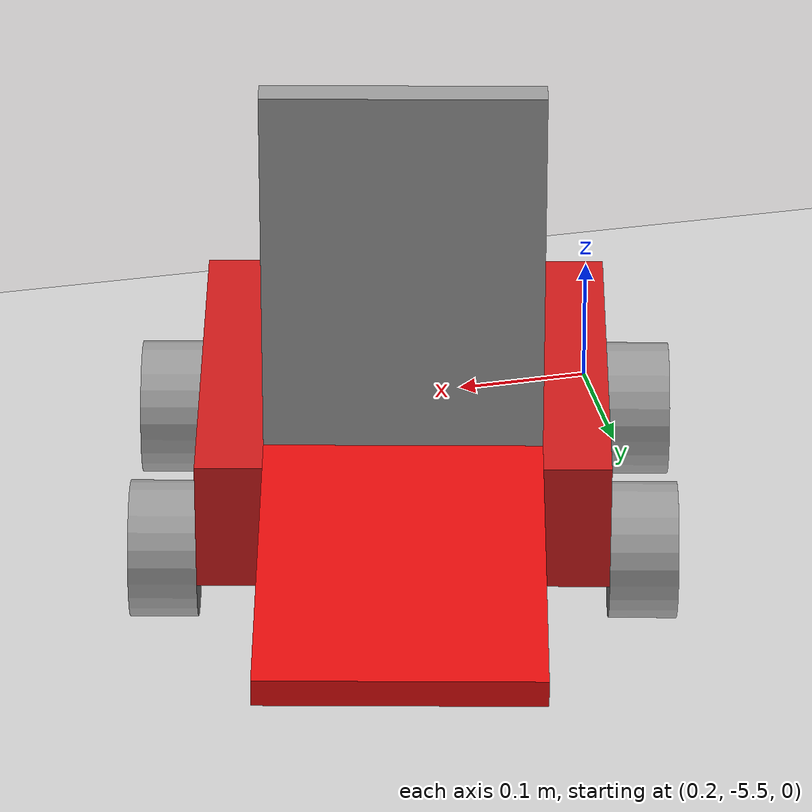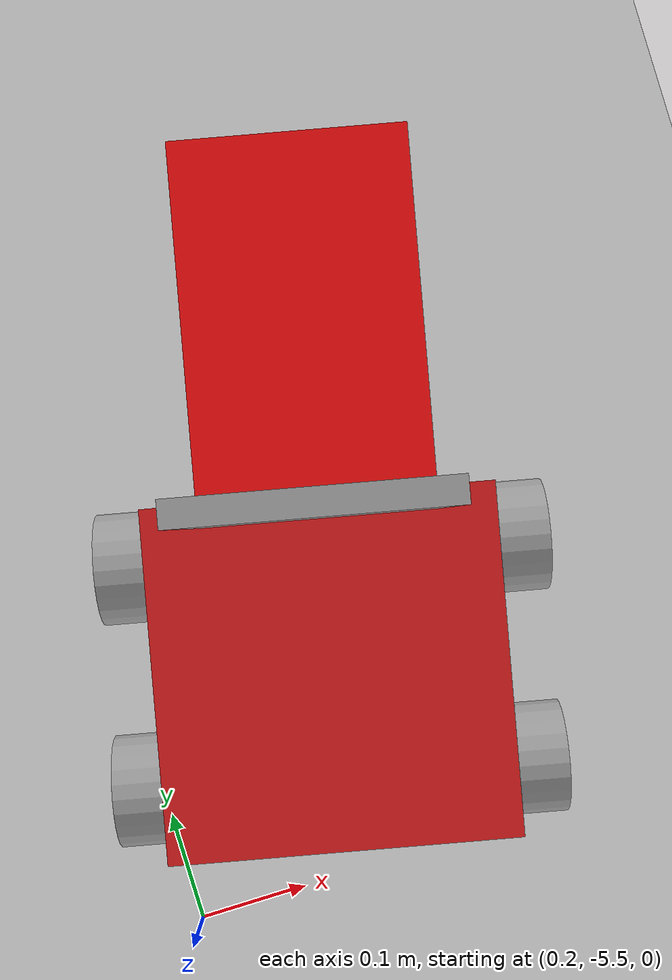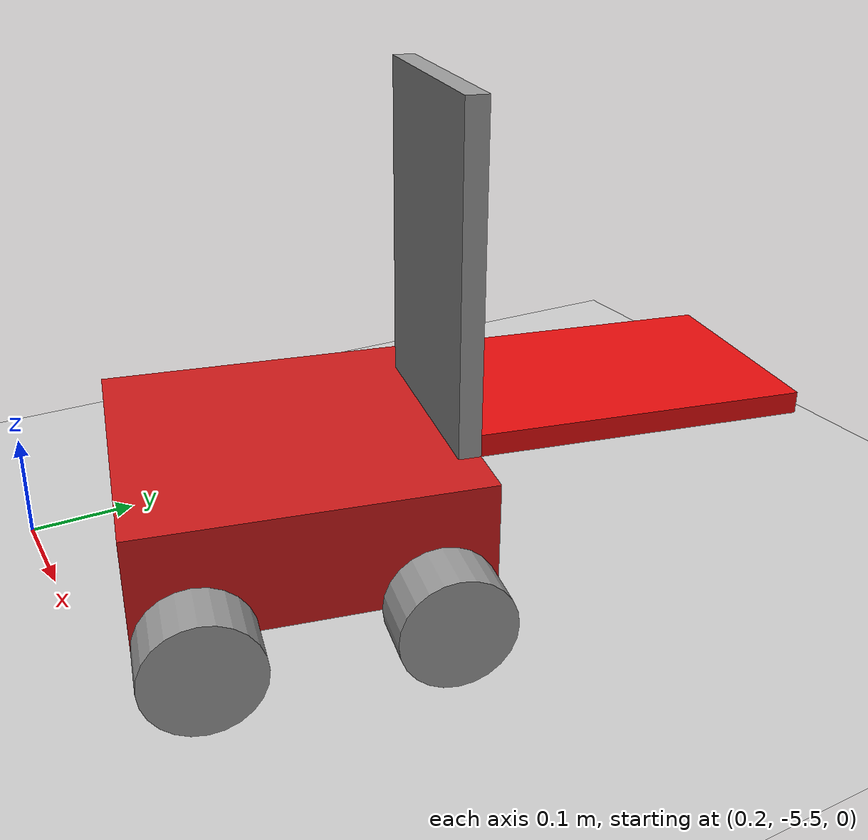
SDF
<sdf version="1.6">
 <world name="default">
  <model name="ground_plane">
   <static>1</static>
   <link name="link">
    <collision name="collision">
     <geometry><plane><normal>0 0 1</normal><size>100 100</size></plane></geometry>
     <surface><friction><ode><mu>100</mu><mu2>50</mu2></ode></friction></surface>
    </collision>
    <visual name="visual">
     <cast_shadows>0</cast_shadows>
     <geometry><plane><normal>0 0 1</normal><size>100 100</size></plane></geometry>
     <material>
      <script><uri>file://media/materials/scripts/gazebo.material</uri><name>Gazebo/Grey</name></script>
     </material>
    </visual>
   </link>
  </model>
  <model name="StoolMover">
   <link name="link_0">
    <pose>0 -0.062857 -0.008571 0 -0 0</pose>
    <inertial>
     <mass>1</mass>
     <inertia>
      <ixx>0.166667</ixx>
      <ixy>0</ixy>
      <ixz>0</ixz>
      <iyy>0.166667</iyy>
      <iyz>0</iyz>
      <izz>0.166667</izz>
     </inertia>
    </inertial>
    <visual name="visual">
     <geometry><box><size>0.3 0.3 0.1</size></box></geometry>
     <material>
      <lighting>1</lighting>
      <script><uri>file://media/materials/scripts/gazebo.material</uri><name>Gazebo/Grey</name></script>
      <shader type="pixel"><normal_map>__default__</normal_map></shader>
      <ambient>0.8 0.1 0.1 1</ambient>
      <diffuse>0.7 0.7 0.7 1</diffuse>
      <specular>0.01 0.01 0.01 1</specular>
      <emissive>0 0 0 1</emissive>
     </material>
    </visual>
    <collision name="collision">
     <geometry><box><size>0.3 0.3 0.1</size></box></geometry>
     <surface>
      <friction>
       <ode><mu>1</mu><mu2>1</mu2><fdir1>0 0 0</fdir1><slip1>0</slip1><slip2>0</slip2></ode>
       <torsional>
        <coefficient>1</coefficient>
        <patch_radius>0</patch_radius>
        <surface_radius>0</surface_radius>
        <use_patch_radius>1</use_patch_radius>
        <ode><slip>0</slip></ode>
       </torsional>
      </friction>
      <bounce><restitution_coefficient>0</restitution_coefficient><threshold>1e+06</threshold></bounce>
      <contact>
       <collide_without_contact>0</collide_without_contact>
       <collide_without_contact_bitmask>1</collide_without_contact_bitmask>
       <collide_bitmask>1</collide_bitmask>
       <ode>
        <soft_cfm>0</soft_cfm>
        <soft_erp>0.2</soft_erp>
        <kp>1e+13</kp>
        <kd>1</kd>
        <max_vel>0.01</max_vel>
        <min_depth>0</min_depth>
       </ode>
       <bullet>
        <split_impulse>1</split_impulse>
        <split_impulse_penetration_threshold>-0.01</split_impulse_penetration_threshold>
        <soft_cfm>0</soft_cfm>
        <soft_erp>0.2</soft_erp>
        <kp>1e+13</kp>
        <kd>1</kd>
       </bullet>
      </contact>
     </surface>
    </collision>
   </link>
   <link name="link_1">
    <pose>0.175 0.037143 -0.058571 0 -0 0</pose>
    <inertial>
     <mass>1</mass>
     <inertia><ixx>0.145833</ixx><ixy>0</ixy><ixz>0</ixz><iyy>0.145833</iyy><iyz>0</iyz><izz>0.125</izz></inertia>
    </inertial>
    <visual name="visual">
     <pose>0 0 0 -3.14159 1.57079 -3.14159</pose>
     <geometry><cylinder><radius>0.05</radius><length>0.05</length></cylinder></geometry>
     <material>
      <lighting>1</lighting>
      <script><uri>file://media/materials/scripts/gazebo.material</uri><name>Gazebo/Grey</name></script>
      <shader type="pixel"><normal_map>__default__</normal_map></shader>
      <ambient>0.3 0.3 0.3 1</ambient>
      <diffuse>0.7 0.7 0.7 1</diffuse>
      <specular>0.01 0.01 0.01 1</specular>
      <emissive>0 0 0 1</emissive>
     </material>
    </visual>
    <collision name="collision">
     <pose>0 0 0 -3.14159 1.57079 -3.14159</pose>
     <geometry><cylinder><radius>0.05</radius><length>0.05</length></cylinder></geometry>
     <surface>
      <friction>
       <ode><mu>1</mu><mu2>1</mu2><fdir1>0 0 0</fdir1><slip1>0</slip1><slip2>0</slip2></ode>
       <torsional>
        <coefficient>1</coefficient>
        <patch_radius>0</patch_radius>
        <surface_radius>0</surface_radius>
        <use_patch_radius>1</use_patch_radius>
        <ode><slip>0</slip></ode>
       </torsional>
      </friction>
      <bounce><restitution_coefficient>0</restitution_coefficient><threshold>1e+06</threshold></bounce>
      <contact>
       <collide_without_contact>0</collide_without_contact>
       <collide_without_contact_bitmask>1</collide_without_contact_bitmask>
       <collide_bitmask>1</collide_bitmask>
       <ode>
        <soft_cfm>0</soft_cfm>
        <soft_erp>0.2</soft_erp>
        <kp>1e+13</kp>
        <kd>1</kd>
        <max_vel>0.01</max_vel>
        <min_depth>0</min_depth>
       </ode>
       <bullet>
        <split_impulse>1</split_impulse>
        <split_impulse_penetration_threshold>-0.01</split_impulse_penetration_threshold>
        <soft_cfm>0</soft_cfm>
        <soft_erp>0.2</soft_erp>
        <kp>1e+13</kp>
        <kd>1</kd>
       </bullet>
      </contact>
     </surface>
    </collision>
   </link>
   <link name="link_1_clone">
    <pose>-0.175 0.037143 -0.058571 0 -0 0</pose>
    <inertial>
     <mass>1</mass>
     <inertia><ixx>0.145833</ixx><ixy>0</ixy><ixz>0</ixz><iyy>0.145833</iyy><iyz>0</iyz><izz>0.125</izz></inertia>
    </inertial>
    <visual name="visual">
     <pose>0 0 0 3.14159 1.57079 3.14159</pose>
     <geometry><cylinder><radius>0.05</radius><length>0.05</length></cylinder></geometry>
     <material>
      <lighting>1</lighting>
      <script><uri>file://media/materials/scripts/gazebo.material</uri><name>Gazebo/Grey</name></script>
      <shader type="pixel"><normal_map>__default__</normal_map></shader>
      <ambient>0.3 0.3 0.3 1</ambient>
      <diffuse>0.7 0.7 0.7 1</diffuse>
      <specular>0.01 0.01 0.01 1</specular>
      <emissive>0 0 0 1</emissive>
     </material>
    </visual>
    <collision name="collision">
     <pose>0 0 0 3.14159 1.57079 3.14159</pose>
     <geometry><cylinder><radius>0.05</radius><length>0.05</length></cylinder></geometry>
     <surface>
      <friction>
       <ode><mu>1</mu><mu2>1</mu2><fdir1>0 0 0</fdir1><slip1>0</slip1><slip2>0</slip2></ode>
       <torsional>
        <coefficient>1</coefficient>
        <patch_radius>0</patch_radius>
        <surface_radius>0</surface_radius>
        <use_patch_radius>1</use_patch_radius>
        <ode><slip>0</slip></ode>
       </torsional>
      </friction>
      <bounce><restitution_coefficient>0</restitution_coefficient><threshold>1e+06</threshold></bounce>
      <contact>
       <collide_without_contact>0</collide_without_contact>
       <collide_without_contact_bitmask>1</collide_without_contact_bitmask>
       <collide_bitmask>1</collide_bitmask>
       <ode>
        <soft_cfm>0</soft_cfm>
        <soft_erp>0.2</soft_erp>
        <kp>1e+13</kp>
        <kd>1</kd>
        <max_vel>0.01</max_vel>
        <min_depth>0</min_depth>
       </ode>
       <bullet>
        <split_impulse>1</split_impulse>
        <split_impulse_penetration_threshold>-0.01</split_impulse_penetration_threshold>
        <soft_cfm>0</soft_cfm>
        <soft_erp>0.2</soft_erp>
        <kp>1e+13</kp>
        <kd>1</kd>
       </bullet>
      </contact>
     </surface>
    </collision>
   </link>
   <link name="link_1_clone_0">
    <pose>-0.175 -0.162857 -0.058571 0 -0 0</pose>
    <inertial>
     <mass>1</mass>
     <inertia><ixx>0.145833</ixx><ixy>0</ixy><ixz>0</ixz><iyy>0.145833</iyy><iyz>0</iyz><izz>0.125</izz></inertia>
    </inertial>
    <visual name="visual">
     <pose>0 0 0 3.14159 1.57079 3.14159</pose>
     <geometry><cylinder><radius>0.05</radius><length>0.05</length></cylinder></geometry>
     <material>
      <lighting>1</lighting>
      <script><uri>file://media/materials/scripts/gazebo.material</uri><name>Gazebo/Grey</name></script>
      <shader type="pixel"><normal_map>__default__</normal_map></shader>
      <ambient>0.3 0.3 0.3 1</ambient>
      <diffuse>0.7 0.7 0.7 1</diffuse>
      <specular>0.01 0.01 0.01 1</specular>
      <emissive>0 0 0 1</emissive>
     </material>
    </visual>
    <collision name="collision">
     <pose>0 0 0 3.14159 1.57079 3.14159</pose>
     <geometry><cylinder><radius>0.05</radius><length>0.05</length></cylinder></geometry>
     <surface>
      <friction>
       <ode><mu>1</mu><mu2>1</mu2><fdir1>0 0 0</fdir1><slip1>0</slip1><slip2>0</slip2></ode>
       <torsional>
        <coefficient>1</coefficient>
        <patch_radius>0</patch_radius>
        <surface_radius>0</surface_radius>
        <use_patch_radius>1</use_patch_radius>
        <ode><slip>0</slip></ode>
       </torsional>
      </friction>
      <bounce><restitution_coefficient>0</restitution_coefficient><threshold>1e+06</threshold></bounce>
      <contact>
       <collide_without_contact>0</collide_without_contact>
       <collide_without_contact_bitmask>1</collide_without_contact_bitmask>
       <collide_bitmask>1</collide_bitmask>
       <ode>
        <soft_cfm>0</soft_cfm>
        <soft_erp>0.2</soft_erp>
        <kp>1e+13</kp>
        <kd>1</kd>
        <max_vel>0.01</max_vel>
        <min_depth>0</min_depth>
       </ode>
       <bullet>
        <split_impulse>1</split_impulse>
        <split_impulse_penetration_threshold>-0.01</split_impulse_penetration_threshold>
        <soft_cfm>0</soft_cfm>
        <soft_erp>0.2</soft_erp>
        <kp>1e+13</kp>
        <kd>1</kd>
       </bullet>
      </contact>
     </surface>
    </collision>
   </link>
   <link name="link_1_clone_1">
    <pose>0.175 -0.162857 -0.058571 0 -0 0</pose>
    <inertial>
     <mass>1</mass>
     <inertia><ixx>0.145833</ixx><ixy>0</ixy><ixz>0</ixz><iyy>0.145833</iyy><iyz>0</iyz><izz>0.125</izz></inertia>
    </inertial>
    <visual name="visual">
     <pose>0 0 0 3.14159 1.57079 3.14159</pose>
     <geometry><cylinder><radius>0.05</radius><length>0.05</length></cylinder></geometry>
     <material>
      <lighting>1</lighting>
      <script><uri>file://media/materials/scripts/gazebo.material</uri><name>Gazebo/Grey</name></script>
      <shader type="pixel"><normal_map>__default__</normal_map></shader>
      <ambient>0.3 0.3 0.3 1</ambient>
      <diffuse>0.7 0.7 0.7 1</diffuse>
      <specular>0.01 0.01 0.01 1</specular>
      <emissive>0 0 0 1</emissive>
     </material>
    </visual>
    <collision name="collision">
     <pose>0 0 0 3.14159 1.57079 3.14159</pose>
     <geometry><cylinder><radius>0.05</radius><length>0.05</length></cylinder></geometry>
     <surface>
      <friction>
       <ode><mu>1</mu><mu2>1</mu2><fdir1>0 0 0</fdir1><slip1>0</slip1><slip2>0</slip2></ode>
       <torsional>
        <coefficient>1</coefficient>
        <patch_radius>0</patch_radius>
        <surface_radius>0</surface_radius>
        <use_patch_radius>1</use_patch_radius>
        <ode><slip>0</slip></ode>
       </torsional>
      </friction>
      <bounce><restitution_coefficient>0</restitution_coefficient><threshold>1e+06</threshold></bounce>
      <contact>
       <collide_without_contact>0</collide_without_contact>
       <collide_without_contact_bitmask>1</collide_without_contact_bitmask>
       <collide_bitmask>1</collide_bitmask>
       <ode>
        <soft_cfm>0</soft_cfm>
        <soft_erp>0.2</soft_erp>
        <kp>1e+13</kp>
        <kd>1</kd>
        <max_vel>0.01</max_vel>
        <min_depth>0</min_depth>
       </ode>
       <bullet>
        <split_impulse>1</split_impulse>
        <split_impulse_penetration_threshold>-0.01</split_impulse_penetration_threshold>
        <soft_cfm>0</soft_cfm>
        <soft_erp>0.2</soft_erp>
        <kp>1e+13</kp>
        <kd>1</kd>
       </bullet>
      </contact>
     </surface>
    </collision>
   </link>
   <link name="link_2">
    <pose>0 0.077143 0.191429 0 -0 0</pose>
    <inertial>
     <mass>1</mass>
     <inertia>
      <ixx>0.166667</ixx>
      <ixy>0</ixy>
      <ixz>0</ixz>
      <iyy>0.166667</iyy>
      <iyz>0</iyz>
      <izz>0.166667</izz>
     </inertia>
    </inertial>
    <visual name="visual">
     <geometry><box><size>0.2 0.02 0.3</size></box></geometry>
     <material>
      <lighting>1</lighting>
      <script><uri>file://media/materials/scripts/gazebo.material</uri><name>Gazebo/Grey</name></script>
      <shader type="pixel"><normal_map>__default__</normal_map></shader>
      <ambient>0.3 0.3 0.3 1</ambient>
      <diffuse>0.7 0.7 0.7 1</diffuse>
      <specular>0.01 0.01 0.01 1</specular>
      <emissive>0 0 0 1</emissive>
     </material>
    </visual>
    <collision name="collision">
     <geometry><box><size>0.2 0.02 0.3</size></box></geometry>
     <surface>
      <friction>
       <ode><mu>1</mu><mu2>1</mu2><fdir1>0 0 0</fdir1><slip1>0</slip1><slip2>0</slip2></ode>
       <torsional>
        <coefficient>1</coefficient>
        <patch_radius>0</patch_radius>
        <surface_radius>0</surface_radius>
        <use_patch_radius>1</use_patch_radius>
        <ode><slip>0</slip></ode>
       </torsional>
      </friction>
      <bounce><restitution_coefficient>0</restitution_coefficient><threshold>1e+06</threshold></bounce>
      <contact>
       <collide_without_contact>0</collide_without_contact>
       <collide_without_contact_bitmask>1</collide_without_contact_bitmask>
       <collide_bitmask>1</collide_bitmask>
       <ode>
        <soft_cfm>0</soft_cfm>
        <soft_erp>0.2</soft_erp>
        <kp>1e+13</kp>
        <kd>1</kd>
        <max_vel>0.01</max_vel>
        <min_depth>0</min_depth>
       </ode>
       <bullet>
        <split_impulse>1</split_impulse>
        <split_impulse_penetration_threshold>-0.01</split_impulse_penetration_threshold>
        <soft_cfm>0</soft_cfm>
        <soft_erp>0.2</soft_erp>
        <kp>1e+13</kp>
        <kd>1</kd>
       </bullet>
      </contact>
     </surface>
    </collision>
   </link>
   <link name="link_2_clone">
    <pose>0 0.237143 0.051429 1.5708 -0 0</pose>
    <inertial>
     <mass>1</mass>
     <inertia>
      <ixx>0.166667</ixx>
      <ixy>0</ixy>
      <ixz>0</ixz>
      <iyy>0.166667</iyy>
      <iyz>0</iyz>
      <izz>0.166667</izz>
     </inertia>
    </inertial>
    <visual name="visual">
     <geometry><box><size>0.2 0.02 0.3</size></box></geometry>
     <material>
      <lighting>1</lighting>
      <script><uri>file://media/materials/scripts/gazebo.material</uri><name>Gazebo/Grey</name></script>
      <shader type="pixel"><normal_map>__default__</normal_map></shader>
      <ambient>0.9 0.05 0.05 1</ambient>
      <diffuse>0.7 0.7 0.7 1</diffuse>
      <specular>0.01 0.01 0.01 1</specular>
      <emissive>0 0 0 1</emissive>
     </material>
    </visual>
    <collision name="collision">
     <geometry><box><size>0.2 0.02 0.3</size></box></geometry>
     <surface>
      <friction>
       <ode><mu>1</mu><mu2>1</mu2><fdir1>0 0 0</fdir1><slip1>0</slip1><slip2>0</slip2></ode>
       <torsional>
        <coefficient>1</coefficient>
        <patch_radius>0</patch_radius>
        <surface_radius>0</surface_radius>
        <use_patch_radius>1</use_patch_radius>
        <ode><slip>0</slip></ode>
       </torsional>
      </friction>
      <bounce><restitution_coefficient>0</restitution_coefficient><threshold>1e+06</threshold></bounce>
      <contact>
       <collide_without_contact>0</collide_without_contact>
       <collide_without_contact_bitmask>1</collide_without_contact_bitmask>
       <collide_bitmask>1</collide_bitmask>
       <ode>
        <soft_cfm>0</soft_cfm>
        <soft_erp>0.2</soft_erp>
        <kp>1e+13</kp>
        <kd>1</kd>
        <max_vel>0.01</max_vel>
        <min_depth>0</min_depth>
       </ode>
       <bullet>
        <split_impulse>1</split_impulse>
        <split_impulse_penetration_threshold>-0.01</split_impulse_penetration_threshold>
        <soft_cfm>0</soft_cfm>
        <soft_erp>0.2</soft_erp>
        <kp>1e+13</kp>
        <kd>1</kd>
       </bullet>
      </contact>
     </surface>
    </collision>
   </link>
   <joint name="link_0_JOINT_1" type="revolute">
    <parent>link_0</parent>
    <child>link_1</child>
    <axis>
     <xyz>1 0 0</xyz>
     <use_parent_model_frame>0</use_parent_model_frame>
     <limit>
      <lower>-1.79769e+308</lower>
      <upper>1.79769e+308</upper>
      <effort>-1</effort>
      <velocity>-1</velocity>
     </limit>
     <dynamics>
      <spring_reference>0</spring_reference>
      <spring_stiffness>0</spring_stiffness>
      <damping>0</damping>
      <friction>0</friction>
     </dynamics>
    </axis>
    <physics>
     <ode><limit><cfm>0</cfm><erp>0.2</erp></limit><suspension><cfm>0</cfm><erp>0.2</erp></suspension></ode>
    </physics>
   </joint>
   <joint name="link_0_JOINT_2" type="fixed">
    <parent>link_0</parent>
    <child>link_2</child>
    <physics>
     <ode><limit><cfm>0</cfm><erp>0.2</erp></limit><suspension><cfm>0</cfm><erp>0.2</erp></suspension></ode>
    </physics>
   </joint>
   <joint name="link_0_JOINT_4" type="revolute">
    <parent>link_0</parent>
    <child>link_1_clone_1</child>
    <axis>
     <xyz>1 0 0</xyz>
     <use_parent_model_frame>0</use_parent_model_frame>
     <limit>
      <lower>-1.79769e+308</lower>
      <upper>1.79769e+308</upper>
      <effort>-1</effort>
      <velocity>-1</velocity>
     </limit>
     <dynamics>
      <spring_reference>0</spring_reference>
      <spring_stiffness>0</spring_stiffness>
      <damping>0</damping>
      <friction>0</friction>
     </dynamics>
    </axis>
    <physics>
     <ode><limit><cfm>0</cfm><erp>0.2</erp></limit><suspension><cfm>0</cfm><erp>0.2</erp></suspension></ode>
    </physics>
   </joint>
   <joint name="link_0_JOINT_5" type="revolute">
    <parent>link_0</parent>
    <child>link_1_clone</child>
    <axis>
     <xyz>1 0 0</xyz>
     <use_parent_model_frame>0</use_parent_model_frame>
     <limit>
      <lower>-1.79769e+308</lower>
      <upper>1.79769e+308</upper>
      <effort>-1</effort>
      <velocity>-1</velocity>
     </limit>
     <dynamics>
      <spring_reference>0</spring_reference>
      <spring_stiffness>0</spring_stiffness>
      <damping>0</damping>
      <friction>0</friction>
     </dynamics>
    </axis>
    <physics>
     <ode><limit><cfm>0</cfm><erp>0.2</erp></limit><suspension><cfm>0</cfm><erp>0.2</erp></suspension></ode>
    </physics>
   </joint>
   <joint name="link_0_JOINT_6" type="revolute">
    <parent>link_0</parent>
    <child>link_1_clone_0</child>
    <axis>
     <xyz>1 0 0</xyz>
     <use_parent_model_frame>0</use_parent_model_frame>
     <limit>
      <lower>-1.79769e+308</lower>
      <upper>1.79769e+308</upper>
      <effort>-1</effort>
      <velocity>-1</velocity>
     </limit>
     <dynamics>
      <spring_reference>0</spring_reference>
      <spring_stiffness>0</spring_stiffness>
      <damping>0</damping>
      <friction>0</friction>
     </dynamics>
    </axis>
    <physics>
     <ode><limit><cfm>0</cfm><erp>0.2</erp></limit><suspension><cfm>0</cfm><erp>0.2</erp></suspension></ode>
    </physics>
   </joint>
   <joint name="link_2_JOINT_3" type="prismatic">
    <parent>link_2</parent>
    <child>link_2_clone</child>
    <axis>
     <xyz>0 1 0</xyz>
     <use_parent_model_frame>0</use_parent_model_frame>
     <limit><lower>0</lower><upper>0.35</upper><effort>10</effort><velocity>1</velocity></limit>
     <dynamics>
      <spring_reference>0</spring_reference>
      <spring_stiffness>0</spring_stiffness>
      <damping>0</damping>
      <friction>0</friction>
     </dynamics>
    </axis>
    <physics>
     <ode><limit><cfm>0</cfm><erp>0.2</erp></limit><suspension><cfm>0</cfm><erp>0.2</erp></suspension></ode>
    </physics>
   </joint>
   <static>0</static>
   <pose>0.399295 -5.24065 0.108572 -2.2e-05 -1e-06 -0.213169</pose>
  </model>
 </world>
</sdf>
